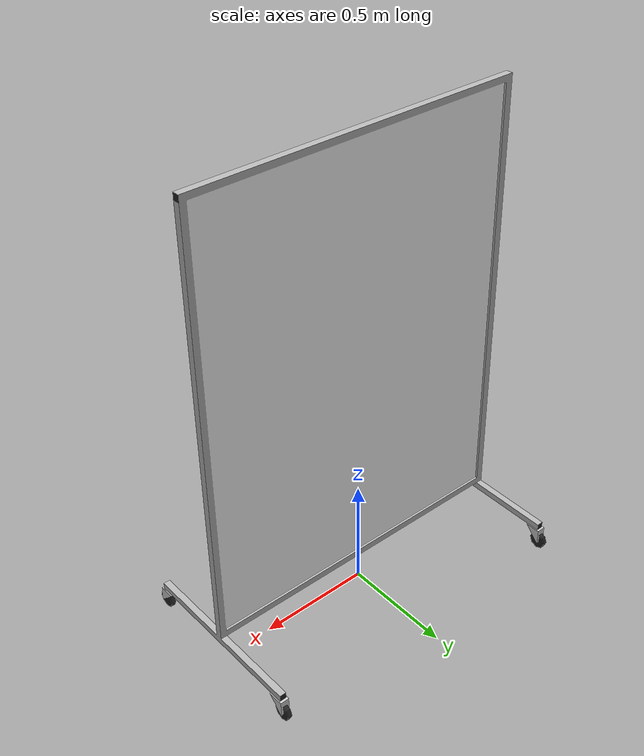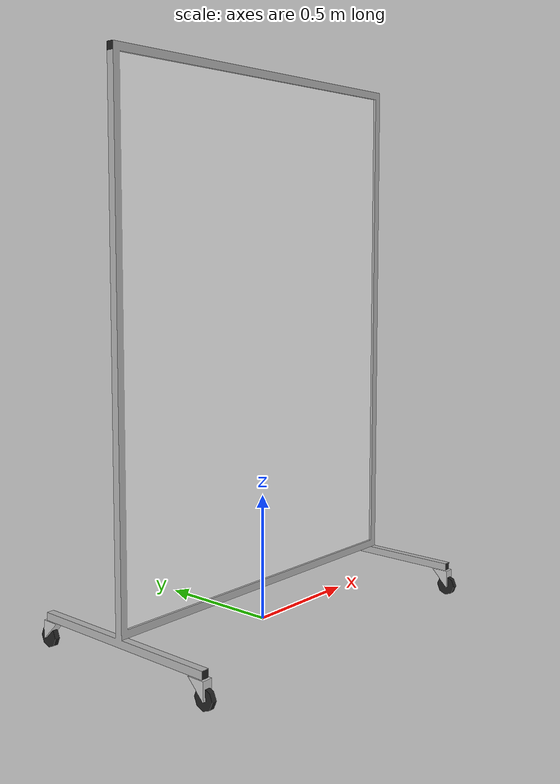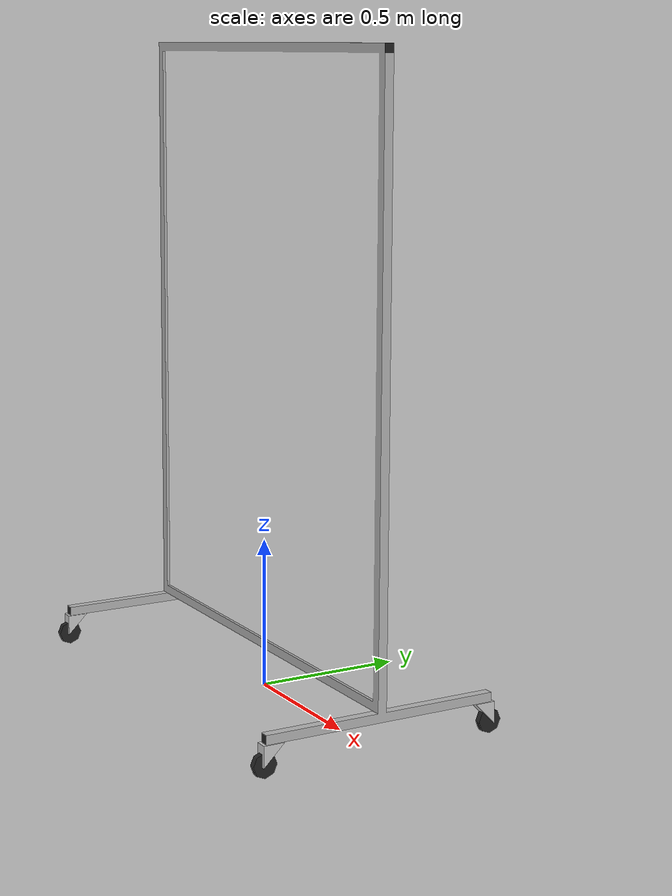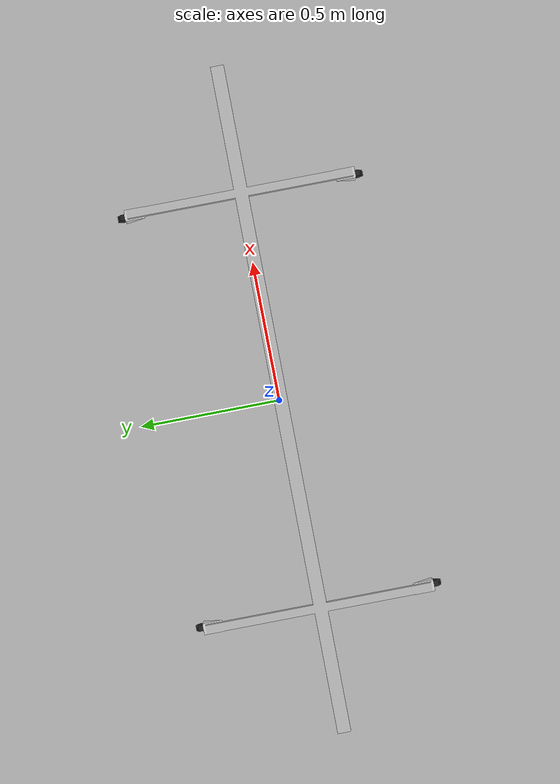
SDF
<?xml version='1.0'?>
<sdf version='1.4'>
  <model name="polycarbonate panel">
    <static>true</static>
    <pose>0 0 0 0 0 0</pose>

    <link name="polycarbonate panel">
      <visual name="panel">
        <geometry>
          <mesh>
            <uri>model://polycarbonate_panel_1_5m/polycarbonate_panel_1_5m.dae</uri>
          </mesh>
        </geometry>
      </visual>
      <collision name="panel_collision">
        <geometry>
          <mesh>
            <uri>model://polycarbonate_panel_1_5m/polycarbonate_panel_1_5m.dae</uri>
          </mesh>
        </geometry>
      </collision>
    </link>

  </model>
</sdf>
